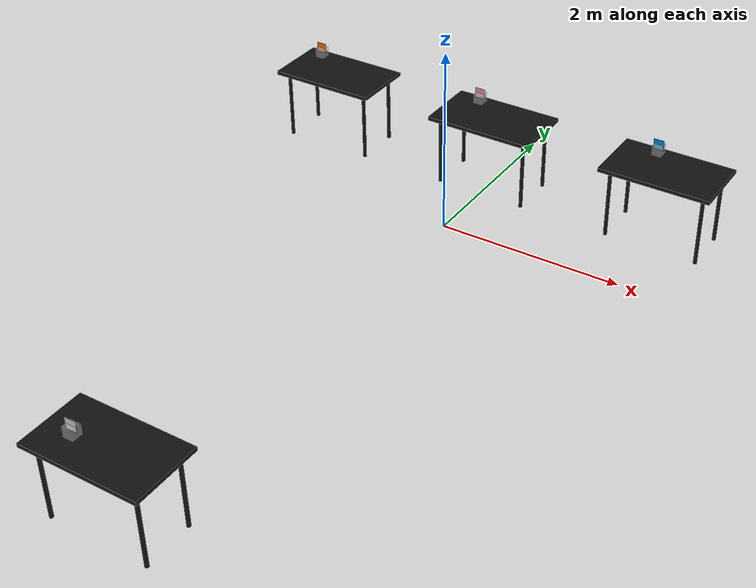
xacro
<?xml version="1.0"?>
<robot xmlns:xacro="http://ros.org/wiki/xacro" name="standalone_apriltag_cube_configurable">

  <!-- 桌子基本参数 -->
  <xacro:property name="table_height" value="0.8" />
  <xacro:property name="table_thickness" value="0.04" />
  <xacro:property name="leg_radius" value="0.02" />

  <!-- 可配置的桌子位置参数 (通过xacro:arg传入) -->
  <!-- 桌子1: 物品拾取桌 -->
  <xacro:arg name="table1_x" default="0.0"/>
  <xacro:arg name="table1_y" default="-5.0"/>
  <xacro:arg name="table1_z" default="0.0"/>
  <xacro:arg name="table1_yaw" default="0.0"/>
  <!-- 桌子2: 放置桌A -->
  <xacro:arg name="table2_x" default="0.0"/>
  <xacro:arg name="table2_y" default="1.0"/>
  <xacro:arg name="table2_z" default="0.0"/>
  <xacro:arg name="table2_yaw" default="0.0"/>
  <!-- 桌子3: 放置桌B -->
  <xacro:arg name="table3_x" default="-2.0"/>
  <xacro:arg name="table3_y" default="1.0"/>
  <xacro:arg name="table3_z" default="0.0"/>
  <xacro:arg name="table3_yaw" default="0.0"/>
  <!-- 桌子4: 放置桌C -->
  <xacro:arg name="table4_x" default="2.0"/>
  <xacro:arg name="table4_y" default="1.0"/>
  <xacro:arg name="table4_z" default="0.0"/>
  <xacro:arg name="table4_yaw" default="0.0"/>

  <xacro:property name="t1_x" value="$(arg table1_x)"/>
  <xacro:property name="t1_y" value="$(arg table1_y)"/>
  <xacro:property name="t1_z" value="$(arg table1_z)"/>
  <xacro:property name="t1_yaw" value="$(arg table1_yaw)"/>
  <xacro:property name="t2_x" value="$(arg table2_x)"/>
  <xacro:property name="t2_y" value="$(arg table2_y)"/>
  <xacro:property name="t2_z" value="$(arg table2_z)"/>
  <xacro:property name="t2_yaw" value="$(arg table2_yaw)"/>
  <xacro:property name="t3_x" value="$(arg table3_x)"/>
  <xacro:property name="t3_y" value="$(arg table3_y)"/>
  <xacro:property name="t3_z" value="$(arg table3_z)"/>
  <xacro:property name="t3_yaw" value="$(arg table3_yaw)"/>
  <xacro:property name="t4_x" value="$(arg table4_x)"/>
  <xacro:property name="t4_y" value="$(arg table4_y)"/>
  <xacro:property name="t4_z" value="$(arg table4_z)"/>
  <xacro:property name="t4_yaw" value="$(arg table4_yaw)"/>

  <!-- 引入apriltag -->
  <xacro:include filename="$(find kuavo_assets)/models/apriltag/urdf/apriltag.xacro"/>

  <link name="world"/>

  <!-- 桌腿宏 (黑色金属材质) -->
  <xacro:macro name="table_leg" params="name">
    <link name="${name}">
      <visual>
        <geometry>
          <cylinder radius="${leg_radius}" length="${table_height}"/>
        </geometry>
        <material name="black_metal">
          <color rgba="0.1 0.1 0.1 1.0"/>
        </material>
      </visual>
      <collision>
        <geometry>
          <cylinder radius="${leg_radius}" length="${table_height}"/>
        </geometry>
      </collision>
      <inertial>
        <mass value="0.5"/>
        <inertia ixx="0.01" ixy="0" ixz="0" iyy="0.01" iyz="0" izz="0.001"/>
      </inertial>
    </link>
    <gazebo reference="${name}">
      <material>Gazebo/DarkGrey</material>
      <mu1>0.5</mu1>
      <mu2>0.5</mu2>
    </gazebo>
  </xacro:macro>

  <!-- 桌子宏 (cube_y_offset: 二维码相对桌子的y偏移, tyaw: 桌子朝向) -->
  <xacro:macro name="table_with_apriltag" params="prefix tx ty tz tyaw cube_y_offset tag_id">
    <!-- 桌面 (1.2m x 0.7m 长方形桌子, 黑色大理石材质) -->
    <link name="${prefix}_link">
      <visual>
        <geometry>
          <box size="1.2 0.7 ${table_thickness}"/>
        </geometry>
        <material name="black_marble">
          <color rgba="0.08 0.08 0.08 1.0"/>
        </material>
      </visual>
      <collision>
        <geometry>
          <box size="1.2 0.7 ${table_thickness}"/>
        </geometry>
      </collision>
      <inertial>
        <mass value="8.0"/>
        <inertia ixx="0.3" ixy="0" ixz="0" iyy="0.8" iyz="0" izz="1.0"/>
      </inertial>
    </link>

    <gazebo reference="${prefix}_link">
      <material>Gazebo/Black</material>
      <mu1>0.5</mu1>
      <mu2>0.5</mu2>
      <kp>1000000.0</kp>
      <kd>100.0</kd>
    </gazebo>

    <joint name="world_to_${prefix}_joint" type="fixed">
      <parent link="world"/>
      <child link="${prefix}_link"/>
      <origin xyz="${tx} ${ty} ${table_height + tz}" rpy="0 0 ${tyaw}"/>
    </joint>

    <!-- 桌腿 -->
    <xacro:table_leg name="${prefix}_leg1"/>
    <xacro:table_leg name="${prefix}_leg2"/>
    <xacro:table_leg name="${prefix}_leg3"/>
    <xacro:table_leg name="${prefix}_leg4"/>

    <!-- 桌腿位置适应1.2x0.7m桌面 -->
    <joint name="${prefix}_to_leg1" type="fixed">
      <parent link="${prefix}_link"/>
      <child link="${prefix}_leg1"/>
      <origin xyz="0.5 0.25 ${-table_height/2}" rpy="0 0 0"/>
    </joint>
    <joint name="${prefix}_to_leg2" type="fixed">
      <parent link="${prefix}_link"/>
      <child link="${prefix}_leg2"/>
      <origin xyz="-0.5 0.25 ${-table_height/2}" rpy="0 0 0"/>
    </joint>
    <joint name="${prefix}_to_leg3" type="fixed">
      <parent link="${prefix}_link"/>
      <child link="${prefix}_leg3"/>
      <origin xyz="0.5 -0.25 ${-table_height/2}" rpy="0 0 0"/>
    </joint>
    <joint name="${prefix}_to_leg4" type="fixed">
      <parent link="${prefix}_link"/>
      <child link="${prefix}_leg4"/>
      <origin xyz="-0.5 -0.25 ${-table_height/2}" rpy="0 0 0"/>
    </joint>

    <!-- 二维码立方体 (y方向偏移-0.3米，与原始文件一致) -->
    <link name="${prefix}_cube">
      <visual>
        <geometry>
          <box size="0.1 0.1 0.1"/>
        </geometry>
        <material>
          <color rgba="0.8 0.8 0.8 0.5"/>
        </material>
      </visual>
      <collision>
        <geometry>
          <box size="0.1 0.1 0.1"/>
        </geometry>
      </collision>
      <inertial>
        <mass value="0.1"/>
        <inertia ixx="0.0001" ixy="0" ixz="0" iyy="0.0001" iyz="0" izz="0.0001"/>
      </inertial>
    </link>

    <!-- 二维码位置需要根据桌子旋转计算 -->
    <joint name="world_to_${prefix}_cube" type="fixed">
      <parent link="world"/>
      <child link="${prefix}_cube"/>
      <origin xyz="${tx - cube_y_offset * sin(tyaw)} ${ty + cube_y_offset * cos(tyaw)} ${1.2 + tz}" rpy="0 0 ${tyaw}"/>
    </joint>

    <xacro:apriltag_marker parent_link="${prefix}_cube" id="${tag_id}">
      <origin xyz="0 0 0.05" rpy="1.5708 0 0"/>
    </xacro:apriltag_marker>
  </xacro:macro>

  <!-- 生成四张桌子 (二维码y偏移: 都在桌子y负方向-0.3，位置一致便于识别) -->
  <!-- 桌子1: 物品拾取桌, AprilTag ID=1 -->
  <xacro:table_with_apriltag prefix="table1" tx="${t1_x}" ty="${t1_y}" tz="${t1_z}" tyaw="${t1_yaw}" cube_y_offset="-0.3" tag_id="1"/>
  <!-- 桌子2: 放置桌A, AprilTag ID=2 -->
  <xacro:table_with_apriltag prefix="table2" tx="${t2_x}" ty="${t2_y}" tz="${t2_z}" tyaw="${t2_yaw}" cube_y_offset="-0.3" tag_id="2"/>
  <!-- 桌子3: 放置桌B, AprilTag ID=3 -->
  <xacro:table_with_apriltag prefix="table3" tx="${t3_x}" ty="${t3_y}" tz="${t3_z}" tyaw="${t3_yaw}" cube_y_offset="-0.3" tag_id="3"/>
  <!-- 桌子4: 放置桌C, AprilTag ID=4 -->
  <xacro:table_with_apriltag prefix="table4" tx="${t4_x}" ty="${t4_y}" tz="${t4_z}" tyaw="${t4_yaw}" cube_y_offset="-0.3" tag_id="4"/>

</robot>

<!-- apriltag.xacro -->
<robot xmlns:xacro="http://ros.org/wiki/xacro" name="apriltag_marker">

  <xacro:macro name="apriltag_marker" params="parent_link *origin id">
    <!-- 定义二维码的Link -->
    <link name="apriltag_marker_${id}">
      <visual>
        <origin xyz="0 0 0" rpy="0 0 0"/>
        <geometry>
          <box size="0.11 0.11 0.001"/>
        </geometry>
      </visual>
      <collision>
        <geometry>
          <box size="0.11 0.11 0.001"/>
        </geometry>
      </collision>
    </link>

    <joint name="apriltag_joint_${id}" type="fixed">
      <xacro:insert_block name="origin" />
      <parent link="${parent_link}"/>
      <child link="apriltag_marker_${id}"/>
    </joint>

    <gazebo reference="apriltag_marker_${id}">
      <visual>
        <material>
          <script>
            <uri>file://$(find kuavo_assets)/models/apriltag/materials/apriltag_${id}.material</uri>
            <name>AprilTag/Marker${id}</name>
          </script>
          <shader type="pixel">
            <normal_map>__default__</normal_map>
          </shader>
          <double_sided>false</double_sided>
        </material>
      </visual>
    </gazebo>
  </xacro:macro>
</robot>
